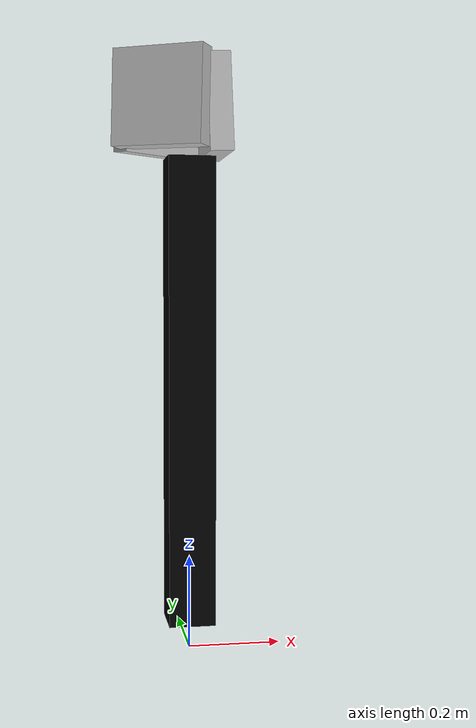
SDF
<?xml version='1.0'?>
<sdf version='1.5'>
  <model name='tag5_prism'>
    <static>true</static>
    <link name="tag5_prism_link">

        <visual name="visual_ar_tag5_prism">
        <geometry>
                <mesh>
                    <uri>model://Tag5_prism/meshes/tag5_prism.dae</uri>
                </mesh>
            </geometry>
        </visual>
         <collision name="collision_ar_tag5_prism">
                <geometry>
                <mesh>
			<uri>model://Tag5_prism/meshes/tag5_prism.dae</uri>
                </mesh>
            </geometry>
        </collision>

    </link>
  </model>
</sdf>
~
